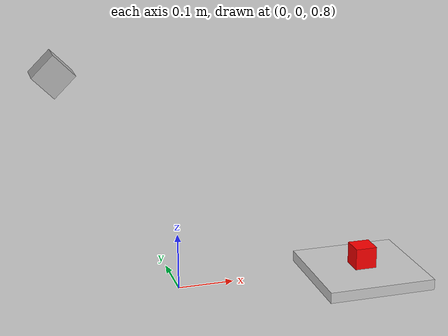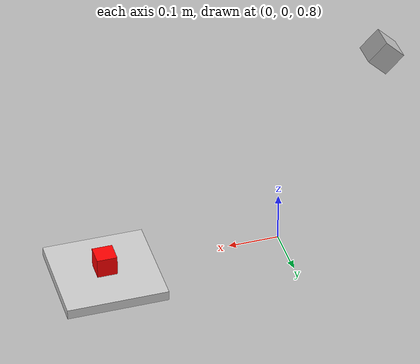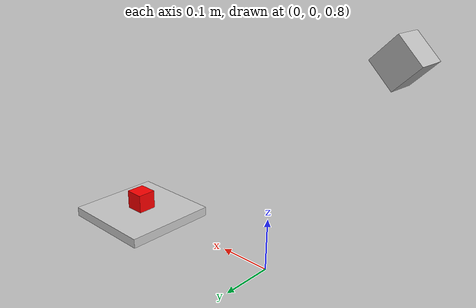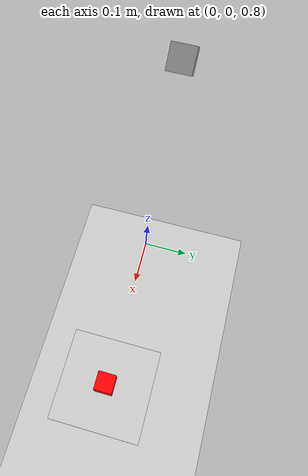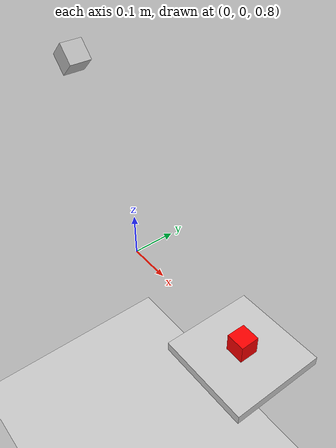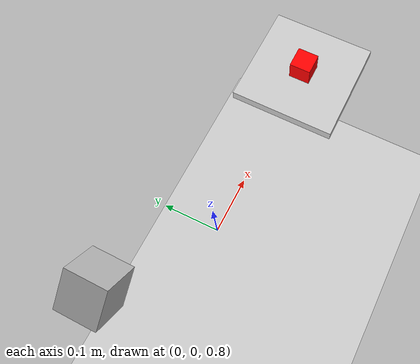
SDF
<?xml version="1.0" ?>
<sdf version="1.4">
  <world name="pick_demo">

    <include><uri>model://sun</uri></include>
    <include><uri>model://ground_plane</uri></include>

    <model name="table">
      <static>true</static>
      <pose>0.35 0 0.79 0 0 0</pose>
      <link name="link">
        <collision name="collision">
          <geometry><box><size>0.2 0.2 0.02</size></box></geometry>
        </collision>
        <visual name="visual">
          <geometry><box><size>0.2 0.2 0.02</size></box></geometry>
          <material><ambient>0.8 0.8 0.8 1</ambient></material>
        </visual>
      </link>
    </model>

    <model name="red_block">
      <pose>0.35 0 0.82 0 0 0</pose>
      <link name="link">
        <collision name="collision">
          <geometry><box><size>0.04 0.04 0.04</size></box></geometry>
          <surface>
            <friction>
              <ode><mu>100.0</mu><mu2>100.0</mu2></ode>
            </friction>
          </surface>
        </collision>
        <visual name="visual">
          <geometry><box><size>0.04 0.04 0.04</size></box></geometry>
          <material><ambient>1 0 0 1</ambient></material>
        </visual>
      </link>
    </model>

    <model name="camera">
      <static>true</static>
      <pose>-0.2 0 1.2 0 0.8 0</pose>
      <link name="link">
        <visual name="visual">
          <geometry><box><size>0.05 0.05 0.05</size></box></geometry>
        </visual>阿
        <sensor name="rgb_camera" type="camera">
          <camera>
            <horizontal_fov>1.047</horizontal_fov>
            <image><width>640</width><height>480</height></image>
            <clip><near>0.1</near><far>100</far></clip>
          </camera>
          <always_on>1</always_on>
          <update_rate>30</update_rate>
          <plugin name="camera_controller" filename="libgazebo_ros_camera.so">
            <alwaysOn>true</alwaysOn>
            <updateRate>30</updateRate>
            <cameraName>camera/rgb</cameraName>
            <imageTopicName>image_raw</imageTopicName>
            <cameraInfoTopicName>camera_info</cameraInfoTopicName>
            <frameName>camera_link</frameName>
          </plugin>
        </sensor>
      </link>
    </model>

  </world>
</sdf>
